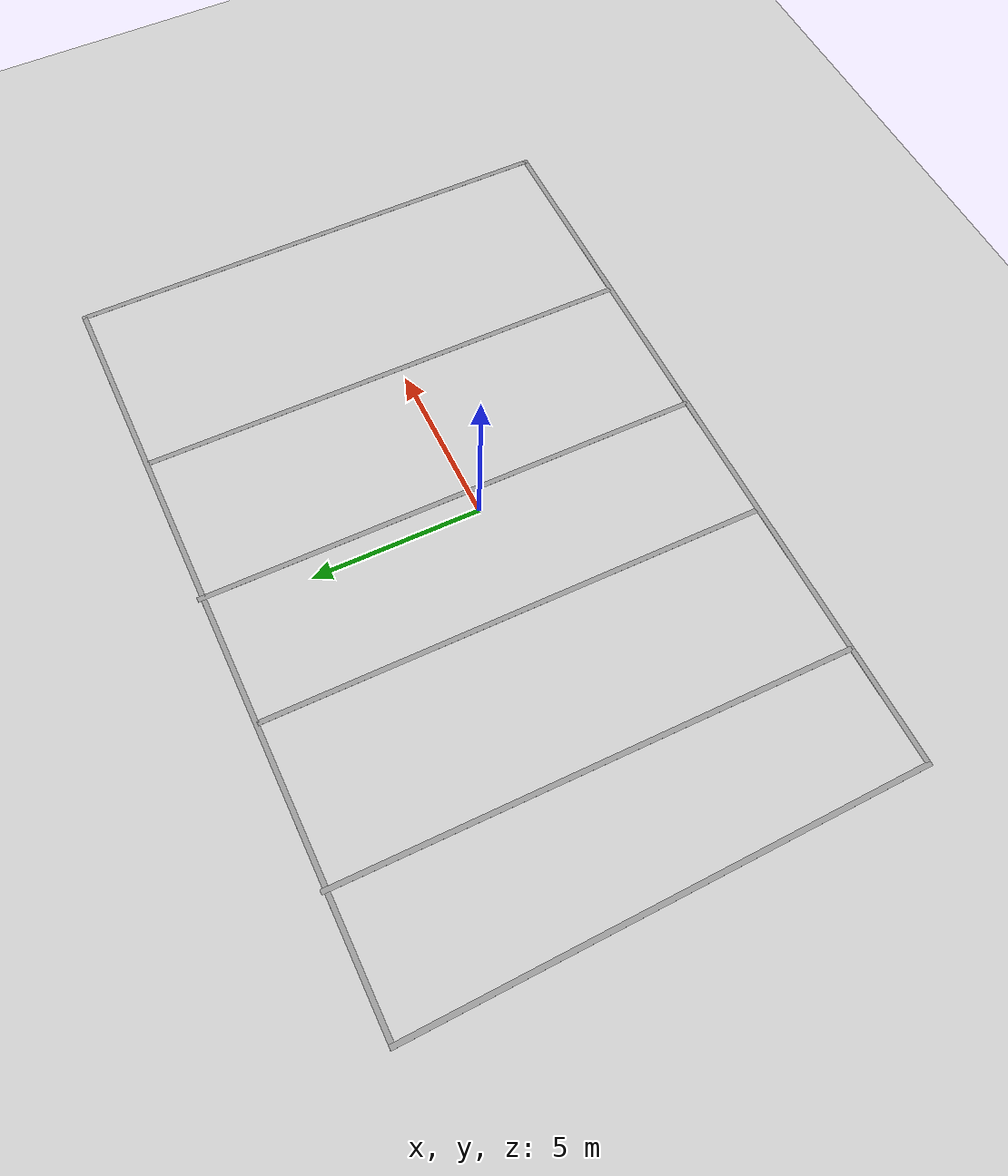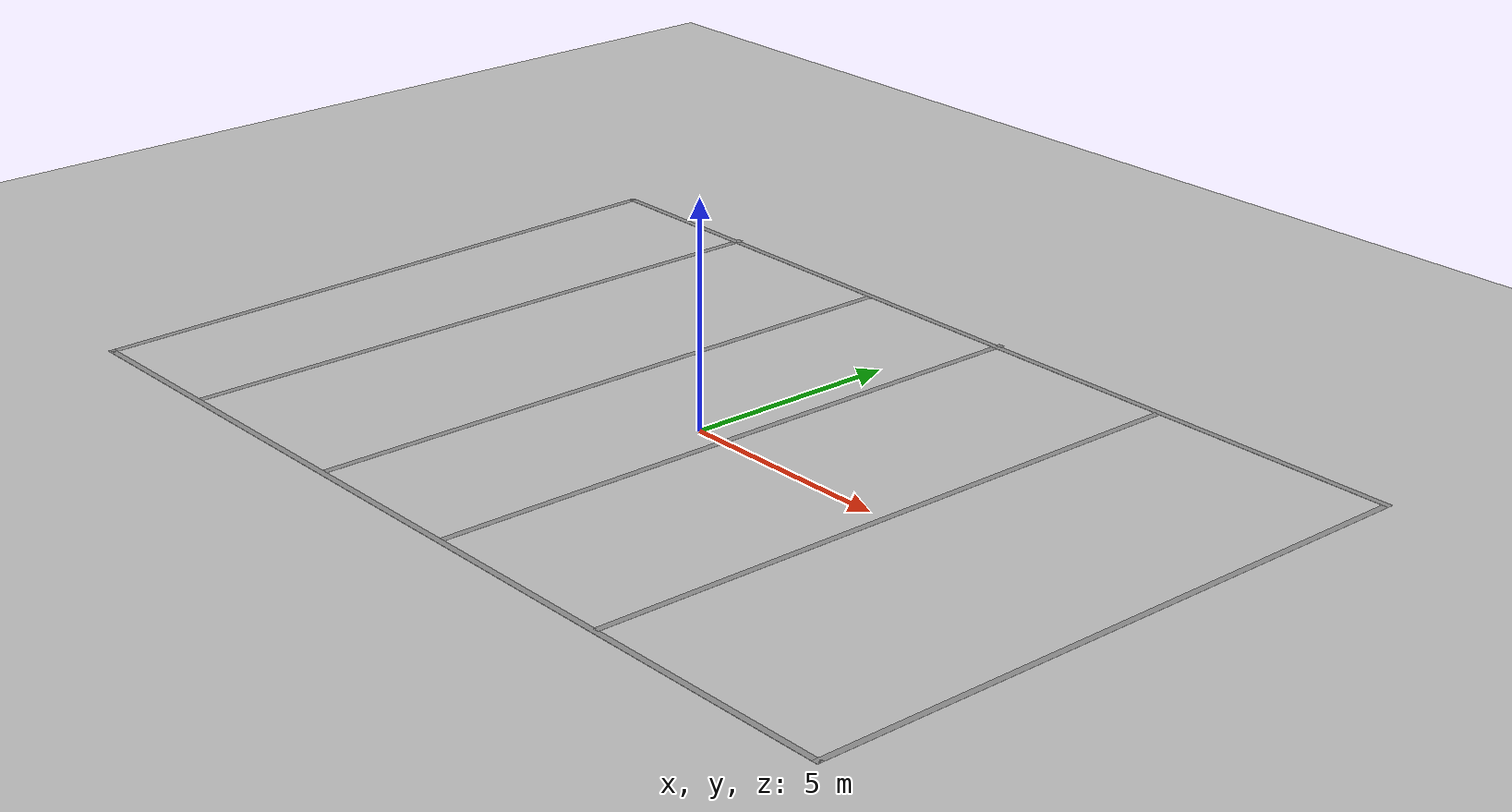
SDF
<sdf version="1.7">
 <world name="default">
  <light name="sun" type="directional">
   <pose>0 0 10 0 -0 0</pose>
   <diffuse>0.8 0.8 0.8 1</diffuse>
   <specular>0.2 0.2 0.2 1</specular>
   <attenuation>
    <range>1000</range>
    <constant>0.9</constant>
    <linear>0.01</linear>
    <quadratic>0.001</quadratic>
   </attenuation>
   <direction>-0.5 0.1 -0.9</direction>
   <spot><inner_angle>0</inner_angle><outer_angle>0</outer_angle><falloff>0</falloff></spot>
  </light>
  <model name="ground_plane">
   <static>1</static>
   <link name="link">
    <collision name="collision">
     <geometry><plane><normal>0 0 1</normal><size>100 100</size></plane></geometry>
     <surface>
      <contact><collide_bitmask>65535</collide_bitmask></contact>
      <friction><ode><mu>100</mu><mu2>50</mu2></ode></friction>
     </surface>
    </collision>
    <visual name="visual">
     <cast_shadows>0</cast_shadows>
     <geometry><plane><normal>0 0 1</normal><size>100 100</size></plane></geometry>
     <material>
      <script><uri>file://media/materials/scripts/gazebo.material</uri><name>Gazebo/Grey</name></script>
     </material>
    </visual>
   </link>
  </model>
  <gravity>0 0 -9.8</gravity>
  <magnetic_field>6e-06 2.3e-05 -4.2e-05</magnetic_field>
  <atmosphere type="adiabatic"/>
  <physics type="ode">
   <max_step_size>0.001</max_step_size>
   <real_time_factor>1</real_time_factor>
   <real_time_update_rate>1000</real_time_update_rate>
  </physics>
  <scene><ambient>0.4 0.4 0.4 1</ambient><background>0.7 0.7 0.7 1</background><shadows>1</shadows></scene>
  <audio><device>default</device></audio>
  <spherical_coordinates>
   <surface_model>EARTH_WGS84</surface_model>
   <latitude_deg>0</latitude_deg>
   <longitude_deg>0</longitude_deg>
   <elevation>0</elevation>
   <heading_deg>0</heading_deg>
  </spherical_coordinates>
  <model name="parkur">
   <pose>-0.331227 0.451801 0 0 -0 0</pose>
   <link name="Wall_11">
    <collision name="Wall_11_Collision">
     <geometry><box><size>23.3337 0.15 0.005</size></box></geometry>
     <pose>0 0 0.0025 0 -0 0</pose>
    </collision>
    <visual name="Wall_11_Visual">
     <pose>0 0 0.0025 0 -0 0</pose>
     <geometry><box><size>23.3337 0.15 0.005</size></box></geometry>
     <material>
      <script><uri>file://media/materials/scripts/gazebo.material</uri><name>Gazebo/Grey</name></script>
      <ambient>0 0 0 1</ambient>
     </material>
     <meta><layer>0</layer></meta>
    </visual>
    <pose>-0.031261 7.40378 0 0 -0 -0.007635</pose>
   </link>
   <link name="Wall_13">
    <collision name="Wall_13_Collision">
     <geometry><box><size>15 0.15 0.005</size></box></geometry>
     <pose>0 0 0.0025 0 -0 0</pose>
    </collision>
    <visual name="Wall_13_Visual">
     <pose>0 0 0.0025 0 -0 0</pose>
     <geometry><box><size>15 0.15 0.005</size></box></geometry>
     <material>
      <script><uri>file://media/materials/scripts/gazebo.material</uri><name>Gazebo/Grey</name></script>
      <ambient>0 0 0 1</ambient>
     </material>
     <meta><layer>0</layer></meta>
    </visual>
    <pose>-7.66676 0.106283 0 0 -0 -1.5708</pose>
   </link>
   <link name="Wall_17">
    <collision name="Wall_17_Collision">
     <geometry><box><size>14.75 0.15 0.005</size></box></geometry>
     <pose>0 0 0.0025 0 -0 0</pose>
    </collision>
    <visual name="Wall_17_Visual">
     <pose>0 0 0.0025 0 -0 0</pose>
     <geometry><box><size>14.75 0.15 0.005</size></box></geometry>
     <material>
      <script><uri>file://media/materials/scripts/gazebo.material</uri><name>Gazebo/Grey</name></script>
      <ambient>0 0 0 1</ambient>
     </material>
     <meta><layer>0</layer></meta>
    </visual>
    <pose>-2.95976 0.022283 0 0 -0 -1.5708</pose>
   </link>
   <link name="Wall_21">
    <collision name="Wall_21_Collision">
     <geometry><box><size>15 0.15 0.005</size></box></geometry>
     <pose>0 0 0.0025 0 -0 0</pose>
    </collision>
    <visual name="Wall_21_Visual">
     <pose>0 0 0.0025 0 -0 0</pose>
     <geometry><box><size>15 0.15 0.005</size></box></geometry>
     <material>
      <script><uri>file://media/materials/scripts/gazebo.material</uri><name>Gazebo/Grey</name></script>
      <ambient>0 0 0 1</ambient>
     </material>
     <meta><layer>0</layer></meta>
    </visual>
    <pose>1.03524 0.053283 0 0 -0 -1.5708</pose>
   </link>
   <link name="Wall_23">
    <collision name="Wall_23_Collision">
     <geometry><box><size>14.75 0.15 0.005</size></box></geometry>
     <pose>0 0 0.0025 0 -0 0</pose>
    </collision>
    <visual name="Wall_23_Visual">
     <pose>0 0 0.0025 0 -0 0</pose>
     <geometry><box><size>14.75 0.15 0.005</size></box></geometry>
     <material>
      <script><uri>file://media/materials/scripts/gazebo.material</uri><name>Gazebo/Grey</name></script>
      <ambient>0 0 0 1</ambient>
     </material>
     <meta><layer>0</layer></meta>
    </visual>
    <pose>5.74324 -0.075717 0 0 -0 1.5708</pose>
   </link>
   <link name="Wall_6">
    <collision name="Wall_6_Collision">
     <geometry><box><size>15.0059 0.15 0.005</size></box></geometry>
     <pose>0 0 0.0025 0 -0 0</pose>
    </collision>
    <visual name="Wall_6_Visual">
     <pose>0 0 0.0025 0 -0 0</pose>
     <geometry><box><size>15.0059 0.15 0.005</size></box></geometry>
     <material>
      <script><uri>file://media/materials/scripts/gazebo.material</uri><name>Gazebo/Grey</name></script>
      <ambient>0 0 0 1</ambient>
     </material>
     <meta><layer>0</layer></meta>
    </visual>
    <pose>-11.4133 0.067283 0 0 -0 -1.54259</pose>
   </link>
   <link name="Wall_7">
    <collision name="Wall_7_Collision">
     <geometry><box><size>22.9787 0.15 0.005</size></box></geometry>
     <pose>0 0 0.0025 0 -0 0</pose>
    </collision>
    <visual name="Wall_7_Visual">
     <pose>0 0 0.0025 0 -0 0</pose>
     <geometry><box><size>22.9787 0.15 0.005</size></box></geometry>
     <material>
      <script><uri>file://media/materials/scripts/gazebo.material</uri><name>Gazebo/Grey</name></script>
      <ambient>0 0 0 1</ambient>
     </material>
     <meta><layer>0</layer></meta>
    </visual>
    <pose>0.210238 -7.44422 0 0 -0 -0.007578</pose>
   </link>
   <link name="Wall_8">
    <collision name="Wall_8_Collision">
     <geometry><box><size>14.9961 0.15 0.005</size></box></geometry>
     <pose>0 0 0.0025 0 -0 0</pose>
    </collision>
    <visual name="Wall_8_Visual">
     <pose>0 0 0.0025 0 -0 0</pose>
     <geometry><box><size>14.9961 0.15 0.005</size></box></geometry>
     <material>
      <script><uri>file://media/materials/scripts/gazebo.material</uri><name>Gazebo/Grey</name></script>
      <ambient>0 0 0 1</ambient>
     </material>
     <meta><layer>0</layer></meta>
    </visual>
    <pose>11.5922 -0.107717 0 0 -0 1.57511</pose>
   </link>
   <static>1</static>
  </model>
 </world>
</sdf>
